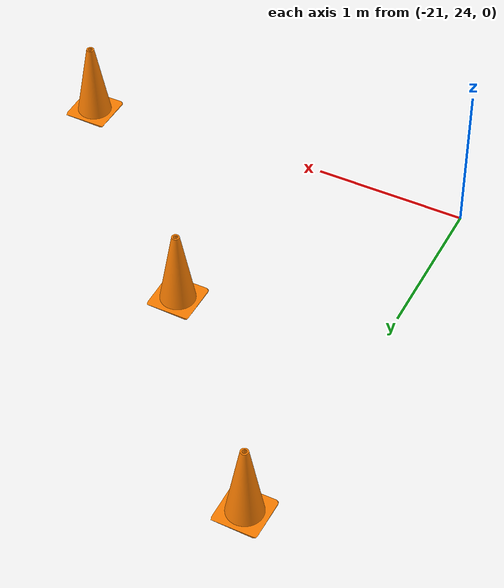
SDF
<sdf version="1.7">
 <world name="IARRC Urban">
  <model name="TallerCone_clone_85">
   <link name="link_0">
    <inertial>
     <mass>0.068</mass>
     <inertia>
      <ixx>0.000367263</ixx>
      <ixy>0</ixy>
      <ixz>0</ixz>
      <iyy>0.000367263</iyy>
      <iyz>0</iyz>
      <izz>0.000165927</izz>
     </inertia>
    </inertial>
    <visual name="visual">
     <geometry><mesh><uri>model://TallerCone/traffic_cone.stl</uri><scale>0.01 0.01 0.01</scale></mesh></geometry>
     <material>
      <lighting>1</lighting>
      <script><uri>file://media/materials/scripts/gazebo.material</uri><name>Gazebo/Grey</name></script>
      <ambient>0.4 0.2 0 1</ambient>
      <diffuse>1 0.5 0 1</diffuse>
      <specular>0.01 0.01 0.01 1</specular>
      <emissive>0 0 0 1</emissive>
     </material>
    </visual>
    <collision name="collision">
     <geometry><mesh><uri>model://TallerCone/traffic_cone.stl</uri></mesh></geometry>
     <surface>
      <friction>
       <ode><mu>1</mu><mu2>1</mu2><fdir1>0 0 0</fdir1><slip1>0</slip1><slip2>0</slip2></ode>
       <torsional>
        <coefficient>1</coefficient>
        <patch_radius>0</patch_radius>
        <surface_radius>0</surface_radius>
        <use_patch_radius>1</use_patch_radius>
        <ode><slip>0</slip></ode>
       </torsional>
      </friction>
      <bounce><restitution_coefficient>0</restitution_coefficient><threshold>1e+06</threshold></bounce>
      <contact>
       <collide_without_contact>0</collide_without_contact>
       <collide_without_contact_bitmask>1</collide_without_contact_bitmask>
       <collide_bitmask>1</collide_bitmask>
       <ode>
        <soft_cfm>0</soft_cfm>
        <soft_erp>0.2</soft_erp>
        <kp>1e+13</kp>
        <kd>1</kd>
        <max_vel>0.01</max_vel>
        <min_depth>0</min_depth>
       </ode>
       <bullet>
        <split_impulse>1</split_impulse>
        <split_impulse_penetration_threshold>-0.01</split_impulse_penetration_threshold>
        <soft_cfm>0</soft_cfm>
        <soft_erp>0.2</soft_erp>
        <kp>1e+13</kp>
        <kd>1</kd>
       </bullet>
      </contact>
     </surface>
    </collision>
   </link>
   <static>1</static>
   <pose>-18.3482 24.1225 -0.034283 0 -0 0</pose>
  </model>
  <model name="TallerCone_clone_86">
   <link name="link_0">
    <inertial>
     <mass>0.068</mass>
     <inertia>
      <ixx>0.000367263</ixx>
      <ixy>0</ixy>
      <ixz>0</ixz>
      <iyy>0.000367263</iyy>
      <iyz>0</iyz>
      <izz>0.000165927</izz>
     </inertia>
    </inertial>
    <visual name="visual">
     <geometry><mesh><uri>model://TallerCone/traffic_cone.stl</uri><scale>0.01 0.01 0.01</scale></mesh></geometry>
     <material>
      <lighting>1</lighting>
      <script><uri>file://media/materials/scripts/gazebo.material</uri><name>Gazebo/Grey</name></script>
      <ambient>0.4 0.2 0 1</ambient>
      <diffuse>1 0.5 0 1</diffuse>
      <specular>0.01 0.01 0.01 1</specular>
      <emissive>0 0 0 1</emissive>
     </material>
    </visual>
    <collision name="collision">
     <geometry><mesh><uri>model://TallerCone/traffic_cone.stl</uri></mesh></geometry>
     <surface>
      <friction>
       <ode><mu>1</mu><mu2>1</mu2><fdir1>0 0 0</fdir1><slip1>0</slip1><slip2>0</slip2></ode>
       <torsional>
        <coefficient>1</coefficient>
        <patch_radius>0</patch_radius>
        <surface_radius>0</surface_radius>
        <use_patch_radius>1</use_patch_radius>
        <ode><slip>0</slip></ode>
       </torsional>
      </friction>
      <bounce><restitution_coefficient>0</restitution_coefficient><threshold>1e+06</threshold></bounce>
      <contact>
       <collide_without_contact>0</collide_without_contact>
       <collide_without_contact_bitmask>1</collide_without_contact_bitmask>
       <collide_bitmask>1</collide_bitmask>
       <ode>
        <soft_cfm>0</soft_cfm>
        <soft_erp>0.2</soft_erp>
        <kp>1e+13</kp>
        <kd>1</kd>
        <max_vel>0.01</max_vel>
        <min_depth>0</min_depth>
       </ode>
       <bullet>
        <split_impulse>1</split_impulse>
        <split_impulse_penetration_threshold>-0.01</split_impulse_penetration_threshold>
        <soft_cfm>0</soft_cfm>
        <soft_erp>0.2</soft_erp>
        <kp>1e+13</kp>
        <kd>1</kd>
       </bullet>
      </contact>
     </surface>
    </collision>
   </link>
   <static>1</static>
   <pose>-19.7159 25.444 -0.034283 0 -0 0</pose>
  </model>
  <model name="TallerCone_clone_87">
   <link name="link_0">
    <inertial>
     <mass>0.068</mass>
     <inertia>
      <ixx>0.000367263</ixx>
      <ixy>0</ixy>
      <ixz>0</ixz>
      <iyy>0.000367263</iyy>
      <iyz>0</iyz>
      <izz>0.000165927</izz>
     </inertia>
    </inertial>
    <visual name="visual">
     <geometry><mesh><uri>model://TallerCone/traffic_cone.stl</uri><scale>0.01 0.01 0.01</scale></mesh></geometry>
     <material>
      <lighting>1</lighting>
      <script><uri>file://media/materials/scripts/gazebo.material</uri><name>Gazebo/Grey</name></script>
      <ambient>0.4 0.2 0 1</ambient>
      <diffuse>1 0.5 0 1</diffuse>
      <specular>0.01 0.01 0.01 1</specular>
      <emissive>0 0 0 1</emissive>
     </material>
    </visual>
    <collision name="collision">
     <geometry><mesh><uri>model://TallerCone/traffic_cone.stl</uri></mesh></geometry>
     <surface>
      <friction>
       <ode><mu>1</mu><mu2>1</mu2><fdir1>0 0 0</fdir1><slip1>0</slip1><slip2>0</slip2></ode>
       <torsional>
        <coefficient>1</coefficient>
        <patch_radius>0</patch_radius>
        <surface_radius>0</surface_radius>
        <use_patch_radius>1</use_patch_radius>
        <ode><slip>0</slip></ode>
       </torsional>
      </friction>
      <bounce><restitution_coefficient>0</restitution_coefficient><threshold>1e+06</threshold></bounce>
      <contact>
       <collide_without_contact>0</collide_without_contact>
       <collide_without_contact_bitmask>1</collide_without_contact_bitmask>
       <collide_bitmask>1</collide_bitmask>
       <ode>
        <soft_cfm>0</soft_cfm>
        <soft_erp>0.2</soft_erp>
        <kp>1e+13</kp>
        <kd>1</kd>
        <max_vel>0.01</max_vel>
        <min_depth>0</min_depth>
       </ode>
       <bullet>
        <split_impulse>1</split_impulse>
        <split_impulse_penetration_threshold>-0.01</split_impulse_penetration_threshold>
        <soft_cfm>0</soft_cfm>
        <soft_erp>0.2</soft_erp>
        <kp>1e+13</kp>
        <kd>1</kd>
       </bullet>
      </contact>
     </surface>
    </collision>
   </link>
   <static>1</static>
   <pose>-20.8416 26.7323 -0.034283 0 -0 0</pose>
  </model>
 </world>
</sdf>
